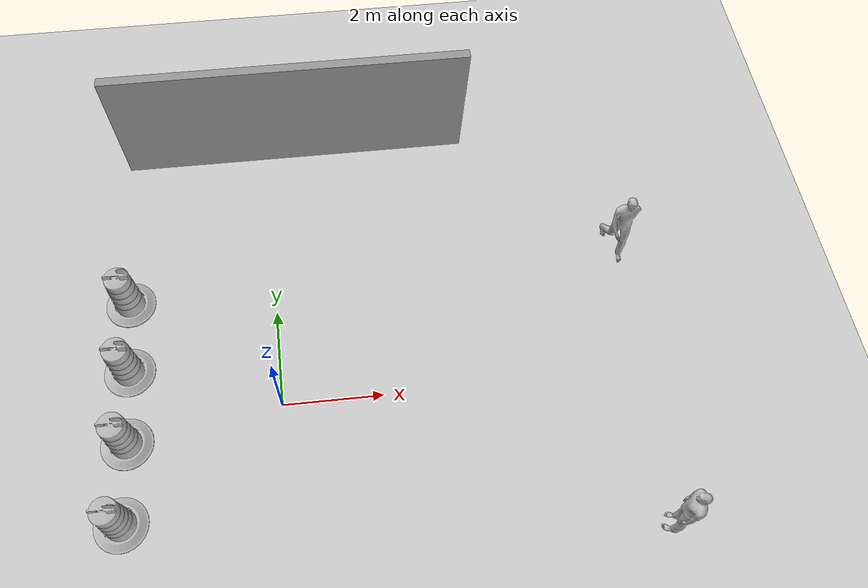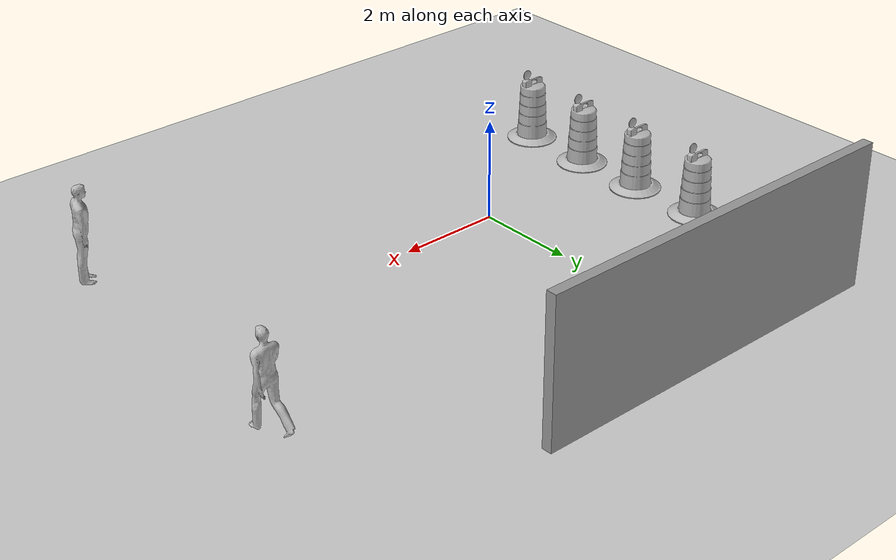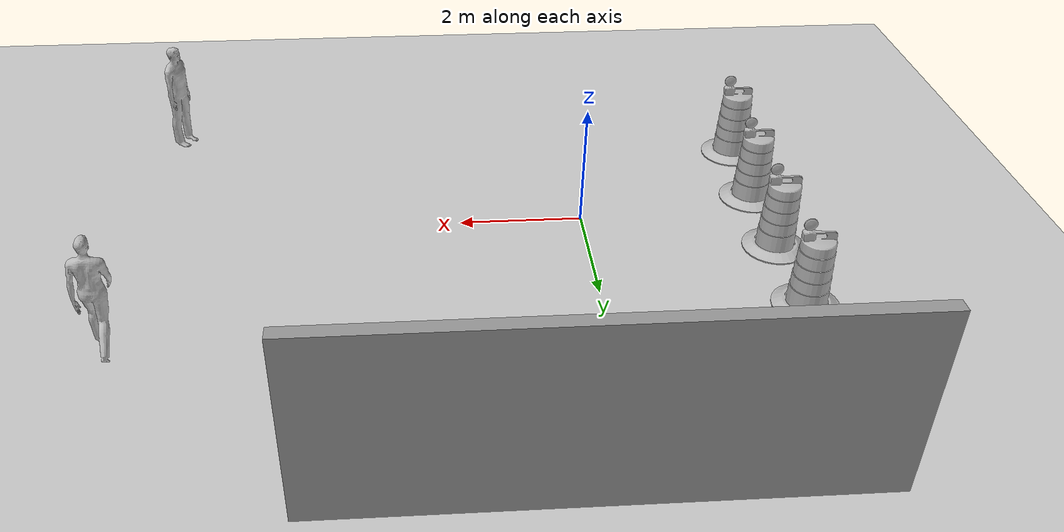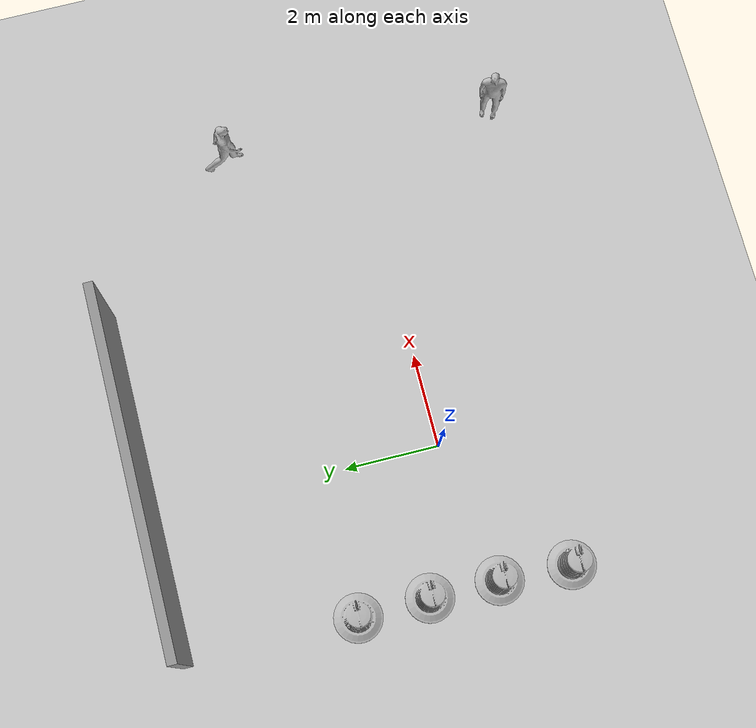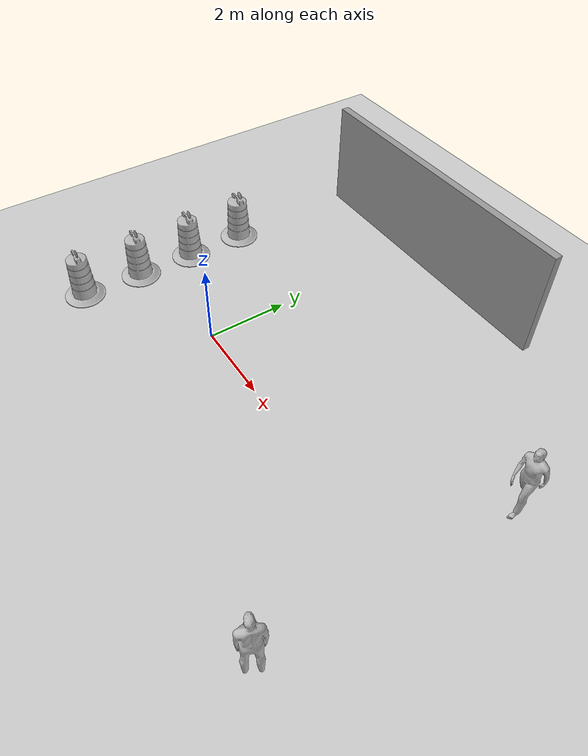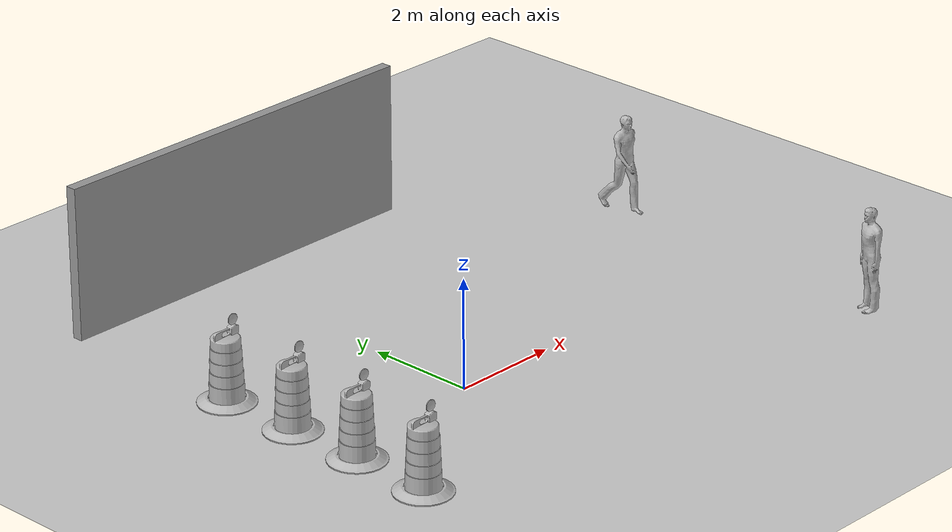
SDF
<sdf version="1.6">
 <world name="default">
  <light name="sun" type="directional">
   <pose>0 0 10 0 -0 0</pose>
   <diffuse>0.8 0.8 0.8 1</diffuse>
   <specular>0.2 0.2 0.2 1</specular>
   <attenuation>
    <range>1000</range>
    <constant>0.9</constant>
    <linear>0.01</linear>
    <quadratic>0.001</quadratic>
   </attenuation>
   <direction>-0.5 0.1 -0.9</direction>
  </light>
  <model name="ground_plane">
   <static>1</static>
   <link name="link">
    <collision name="collision">
     <geometry><plane><normal>0 0 1</normal><size>100 100</size></plane></geometry>
     <surface>
      <contact><collide_bitmask>65535</collide_bitmask></contact>
      <friction><ode><mu>100</mu><mu2>50</mu2></ode></friction>
     </surface>
    </collision>
    <visual name="visual">
     <cast_shadows>0</cast_shadows>
     <geometry><plane><normal>0 0 1</normal><size>100 100</size></plane></geometry>
     <material>
      <script><uri>file://media/materials/scripts/gazebo.material</uri><name>Gazebo/Grey</name></script>
     </material>
    </visual>
   </link>
  </model>
  <gravity>0 0 -9.8</gravity>
  <magnetic_field>6e-06 2.3e-05 -4.2e-05</magnetic_field>
  <atmosphere type="adiabatic"/>
  <physics name="default_physics" default="0" type="ode">
   <max_step_size>0.001</max_step_size>
   <real_time_factor>1</real_time_factor>
   <real_time_update_rate>1000</real_time_update_rate>
  </physics>
  <scene><ambient>0.4 0.4 0.4 1</ambient><background>0.7 0.7 0.7 1</background><shadows>1</shadows></scene>
  <audio><device>default</device></audio>
  <spherical_coordinates>
   <surface_model>EARTH_WGS84</surface_model>
   <latitude_deg>0</latitude_deg>
   <longitude_deg>0</longitude_deg>
   <elevation>0</elevation>
   <heading_deg>0</heading_deg>
  </spherical_coordinates>
  <model name="Construction Barrel">
   <link name="link">
    <inertial>
     <pose>0 0 0.4 0 -0 0</pose>
     <mass>500</mass>
     <inertia><ixx>51.2096</ixx><iyy>51.2096</iyy><izz>25</izz><ixy>0</ixy><ixz>0</ixz><iyz>0</iyz></inertia>
    </inertial>
    <collision name="collision">
     <geometry><mesh><uri>model://construction_barrel/meshes/construction_barrel.dae</uri></mesh></geometry>
    </collision>
    <visual name="visual">
     <geometry><mesh><uri>model://construction_barrel/meshes/construction_barrel.dae</uri></mesh></geometry>
    </visual>
   </link>
   <pose>-3.04188 -2.00864 -1e-06 3e-06 7e-06 -1.5e-05</pose>
  </model>
  <model name="Construction Barrel_0">
   <link name="link">
    <inertial>
     <pose>0 0 0.4 0 -0 0</pose>
     <mass>500</mass>
     <inertia><ixx>51.2096</ixx><iyy>51.2096</iyy><izz>25</izz><ixy>0</ixy><ixz>0</ixz><iyz>0</iyz></inertia>
    </inertial>
    <collision name="collision">
     <geometry><mesh><uri>model://construction_barrel/meshes/construction_barrel.dae</uri></mesh></geometry>
    </collision>
    <visual name="visual">
     <geometry><mesh><uri>model://construction_barrel/meshes/construction_barrel.dae</uri></mesh></geometry>
    </visual>
   </link>
   <pose>-2.98717 -0.490487 0 0 0 -1.5e-05</pose>
  </model>
  <model name="Construction Barrel_1">
   <link name="link">
    <inertial>
     <pose>0 0 0.4 0 -0 0</pose>
     <mass>500</mass>
     <inertia><ixx>51.2096</ixx><iyy>51.2096</iyy><izz>25</izz><ixy>0</ixy><ixz>0</ixz><iyz>0</iyz></inertia>
    </inertial>
    <collision name="collision">
     <geometry><mesh><uri>model://construction_barrel/meshes/construction_barrel.dae</uri></mesh></geometry>
    </collision>
    <visual name="visual">
     <geometry><mesh><uri>model://construction_barrel/meshes/construction_barrel.dae</uri></mesh></geometry>
    </visual>
   </link>
   <pose>-2.98324 0.979886 -0 1e-06 -1e-06 -1.2e-05</pose>
  </model>
  <model name="Construction Barrel_2">
   <link name="link">
    <inertial>
     <pose>0 0 0.4 0 -0 0</pose>
     <mass>500</mass>
     <inertia><ixx>51.2096</ixx><iyy>51.2096</iyy><izz>25</izz><ixy>0</ixy><ixz>0</ixz><iyz>0</iyz></inertia>
    </inertial>
    <collision name="collision">
     <geometry><mesh><uri>model://construction_barrel/meshes/construction_barrel.dae</uri></mesh></geometry>
    </collision>
    <visual name="visual">
     <geometry><mesh><uri>model://construction_barrel/meshes/construction_barrel.dae</uri></mesh></geometry>
    </visual>
   </link>
   <pose>-3.01154 2.49421 -1e-06 -0 5e-06 -1e-05</pose>
  </model>
  <model name="grey_wall">
   <static>1</static>
   <link name="link">
    <pose>0 0 1.4 0 -0 0</pose>
    <collision name="collision"><geometry><box><size>7.5 0.2 2.8</size></box></geometry></collision>
    <visual name="visual">
     <cast_shadows>0</cast_shadows>
     <geometry><box><size>7.5 0.2 2.8</size></box></geometry>
     <material>
      <script>
       <uri>model://grey_wall/materials/scripts</uri>
       <uri>model://grey_wall/materials/textures</uri>
       <name>vrc/grey_wall</name>
      </script>
     </material>
    </visual>
   </link>
   <pose>0.619733 6.04884 0 0 -0 0</pose>
  </model>
  <model name="person_walking">
   <link name="link">
    <inertial>
     <pose>0 0 0.95 0 -0 0</pose>
     <mass>80</mass>
     <inertia><ixx>27.82</ixx><ixy>0</ixy><ixz>0</ixz><iyy>24.88</iyy><iyz>0</iyz><izz>4.57</izz></inertia>
    </inertial>
    <collision name="bottom">
     <pose>0 0 0.01 0 -0 0</pose>
     <geometry><box><size>0.35 0.75 0.02</size></box></geometry>
    </collision>
    <collision name="person">
     <pose>0 0 -0.02 0 -0 0</pose>
     <geometry><mesh><uri>model://person_walking/meshes/walking.dae</uri></mesh></geometry>
    </collision>
    <visual name="visual">
     <pose>0 0 -0.02 0 -0 0</pose>
     <geometry><mesh><uri>model://person_walking/meshes/walking.dae</uri></mesh></geometry>
    </visual>
   </link>
   <pose>7.19463 2.86628 -0 -0 1e-06 0.000573</pose>
  </model>
  <model name="person_standing">
   <link name="link">
    <inertial>
     <pose>0 -0.1 0.95 0 -0 0</pose>
     <mass>80</mass>
     <inertia><ixx>24.88</ixx><ixy>0</ixy><ixz>0</ixz><iyy>25.73</iyy><iyz>0</iyz><izz>2.48</izz></inertia>
    </inertial>
    <collision name="bottom">
     <pose>0 -0.1 0.01 0 -0 0</pose>
     <geometry><box><size>0.5 0.35 0.02</size></box></geometry>
    </collision>
    <collision name="person">
     <pose>0 0 0.02 0.04 -0 0</pose>
     <geometry><mesh><uri>model://person_standing/meshes/standing.dae</uri></mesh></geometry>
    </collision>
    <visual name="visual">
     <pose>0 0 0.02 0.04 -0 0</pose>
     <geometry><mesh><uri>model://person_standing/meshes/standing.dae</uri></mesh></geometry>
    </visual>
   </link>
   <pose>7.02168 -3.02012 0 1e-06 -1e-06 -2.02598</pose>
  </model>
 </world>
</sdf>
